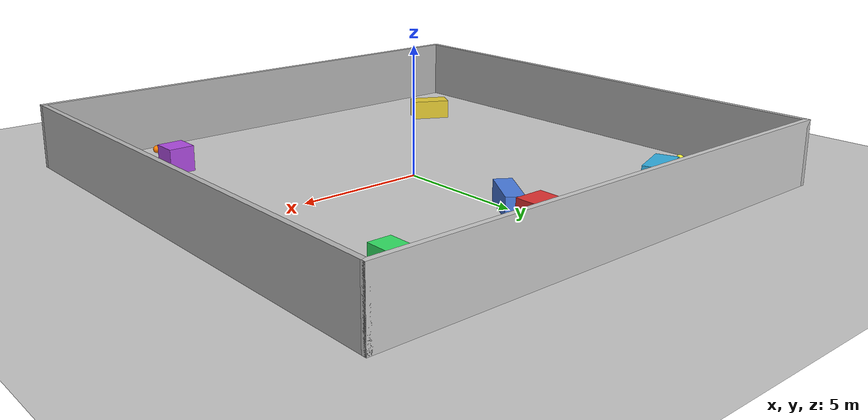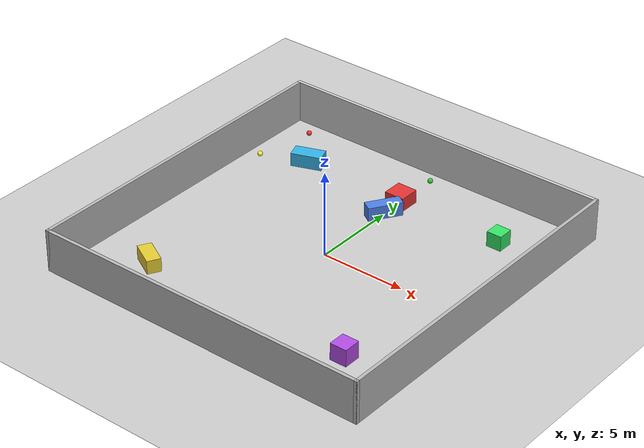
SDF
<sdf version="1.6">
 <world name="room_20x20">
  <physics type="ode"><max_step_size>0.01</max_step_size></physics>
  <model name="ground_plane">
   <static>true</static>
   <link name="link">
    <collision name="collision">
     <geometry><plane><normal>0 0 1</normal><size>100 100</size></plane></geometry>
    </collision>
    <visual name="visual">
     <geometry><plane><normal>0 0 1</normal><size>100 100</size></plane></geometry>
     <material><ambient>0.8 0.8 0.8 1</ambient><diffuse>0.8 0.8 0.8 1</diffuse></material>
    </visual>
   </link>
  </model>
  <model name="wall_north">
   <static>true</static>
   <link name="link">
    <pose>0 10.1 1.25 0 0 0</pose>
    <collision name="collision"><geometry><box><size>20.4 0.2 2.5</size></box></geometry></collision>
    <visual name="visual">
     <geometry><box><size>20.4 0.2 2.5</size></box></geometry>
     <material><ambient>0.7 0.7 0.7 1</ambient><diffuse>0.8 0.8 0.8 1</diffuse></material>
    </visual>
   </link>
  </model>
  <model name="wall_south">
   <static>true</static>
   <link name="link">
    <pose>0 -10.1 1.25 0 0 0</pose>
    <collision name="collision"><geometry><box><size>20.4 0.2 2.5</size></box></geometry></collision>
    <visual name="visual"><geometry><box><size>20.4 0.2 2.5</size></box></geometry></visual>
   </link>
  </model>
  <model name="wall_east">
   <static>true</static>
   <link name="link">
    <pose>10.1 0 1.25 0 0 0</pose>
    <collision name="collision"><geometry><box><size>0.2 20.4 2.5</size></box></geometry></collision>
    <visual name="visual"><geometry><box><size>0.2 20.4 2.5</size></box></geometry></visual>
   </link>
  </model>
  <model name="wall_west">
   <static>true</static>
   <link name="link">
    <pose>-10.1 0 1.25 0 0 0</pose>
    <collision name="collision"><geometry><box><size>0.2 20.4 2.5</size></box></geometry></collision>
    <visual name="visual"><geometry><box><size>0.2 20.4 2.5</size></box></geometry></visual>
   </link>
  </model>
  <model name="ball_north_1">
   <static>true</static>
   <pose>-8.5 9.0 0.15 0 0 0</pose>
   <link name="link">
    <collision name="collision"><geometry><sphere><radius>0.15</radius></sphere></geometry></collision>
    <visual name="visual">
     <geometry><sphere><radius>0.15</radius></sphere></geometry>
     <material><ambient>1 0.2 0.2 1</ambient><diffuse>1 0.2 0.2 1</diffuse></material>
    </visual>
   </link>
  </model>
  <model name="ball_north_2">
   <static>true</static>
   <pose>0.0 9.2 0.15 0 0 0</pose>
   <link name="link">
    <collision name="collision"><geometry><sphere><radius>0.15</radius></sphere></geometry></collision>
    <visual name="visual">
     <geometry><sphere><radius>0.15</radius></sphere></geometry>
     <material><ambient>0.2 0.8 0.2 1</ambient><diffuse>0.2 0.8 0.2 1</diffuse></material>
    </visual>
   </link>
  </model>
  <model name="box_east_1">
   <static>true</static>
   <pose>9.0 -6.0 0.15 0 0 0</pose>
   <link name="link">
    <collision name="collision"><geometry><box><size>0.3 0.3 0.3</size></box></geometry></collision>
    <visual name="visual">
     <geometry><box><size>0.3 0.3 0.3</size></box></geometry>
     <material><ambient>0.2 0.2 1 1</ambient><diffuse>0.2 0.2 1 1</diffuse></material>
    </visual>
   </link>
  </model>
  <model name="ball_west_1">
   <static>true</static>
   <pose>-9.2 5.5 0.15 0 0 0</pose>
   <link name="link">
    <collision name="collision"><geometry><sphere><radius>0.15</radius></sphere></geometry></collision>
    <visual name="visual">
     <geometry><sphere><radius>0.15</radius></sphere></geometry>
     <material><ambient>1 1 0.2 1</ambient><diffuse>1 1 0.2 1</diffuse></material>
    </visual>
   </link>
  </model>
  <model name="ball_south_1">
   <static>true</static>
   <pose>6.0 -9.2 0.15 0 0 0</pose>
   <link name="link">
    <collision name="collision"><geometry><sphere><radius>0.15</radius></sphere></geometry></collision>
    <visual name="visual">
     <geometry><sphere><radius>0.15</radius></sphere></geometry>
     <material><ambient>1 0.5 0 1</ambient><diffuse>1 0.5 0 1</diffuse></material>
    </visual>
   </link>
  </model>
  <model name="test_box_center_square">
   <static>true</static>
   <pose>0.0 6.5 0.4 0 0 0</pose>
   <link name="link">
    <collision name="collision"><geometry><box><size>1.2 1.2 0.8</size></box></geometry></collision>
    <visual name="visual">
     <geometry><box><size>1.2 1.2 0.8</size></box></geometry>
     <material><ambient>0.9 0.2 0.2 1</ambient><diffuse>0.9 0.2 0.2 1</diffuse></material>
    </visual>
   </link>
  </model>
  <model name="test_box_nw_rect">
   <static>true</static>
   <pose>-6.5 6.5 0.4 0 0 0.35</pose>
   <link name="link">
    <collision name="collision"><geometry><box><size>1.8 0.9 0.8</size></box></geometry></collision>
    <visual name="visual">
     <geometry><box><size>1.8 0.9 0.8</size></box></geometry>
     <material><ambient>0.2 0.7 0.9 1</ambient><diffuse>0.2 0.7 0.9 1</diffuse></material>
    </visual>
   </link>
  </model>
  <model name="test_box_ne_square">
   <static>true</static>
   <pose>6.5 6.5 0.45 0 0 0</pose>
   <link name="link">
    <collision name="collision"><geometry><box><size>0.9 0.9 0.9</size></box></geometry></collision>
    <visual name="visual">
     <geometry><box><size>0.9 0.9 0.9</size></box></geometry>
     <material><ambient>0.2 0.9 0.4 1</ambient><diffuse>0.2 0.9 0.4 1</diffuse></material>
    </visual>
   </link>
  </model>
  <model name="test_box_sw_rect">
   <static>true</static>
   <pose>-6.5 -6.5 0.4 0 0 -0.5</pose>
   <link name="link">
    <collision name="collision"><geometry><box><size>1.6 0.8 0.8</size></box></geometry></collision>
    <visual name="visual">
     <geometry><box><size>1.6 0.8 0.8</size></box></geometry>
     <material><ambient>0.9 0.8 0.2 1</ambient><diffuse>0.9 0.8 0.2 1</diffuse></material>
    </visual>
   </link>
  </model>
  <model name="test_box_se_square">
   <static>true</static>
   <pose>6.5 -6.5 0.5 0 0 0</pose>
   <link name="link">
    <collision name="collision"><geometry><box><size>1.0 1.0 1.0</size></box></geometry></collision>
    <visual name="visual">
     <geometry><box><size>1.0 1.0 1.0</size></box></geometry>
     <material><ambient>0.7 0.3 0.9 1</ambient><diffuse>0.7 0.3 0.9 1</diffuse></material>
    </visual>
   </link>
  </model>
  <model name="test_box_mid_north_rect">
   <static>true</static>
   <pose>0.0 5.0 0.4 0 0 1.0</pose>
   <link name="link">
    <collision name="collision"><geometry><box><size>2.0 0.7 0.8</size></box></geometry></collision>
    <visual name="visual">
     <geometry><box><size>2.0 0.7 0.8</size></box></geometry>
     <material><ambient>0.3 0.5 0.9 1</ambient><diffuse>0.3 0.5 0.9 1</diffuse></material>
    </visual>
   </link>
  </model>
  <light type="directional" name="sun">
   <pose>0 0 10 0 0 0</pose>
   <diffuse>0.8 0.8 0.8 1</diffuse>
   <specular>0.2 0.2 0.2 1</specular>
   <attenuation>
    <range>1000</range>
    <constant>0.9</constant>
    <linear>0.01</linear>
    <quadratic>0.001</quadratic>
   </attenuation>
   <direction>-0.5 0.1 -0.9</direction>
  </light>
 </world>
</sdf>
